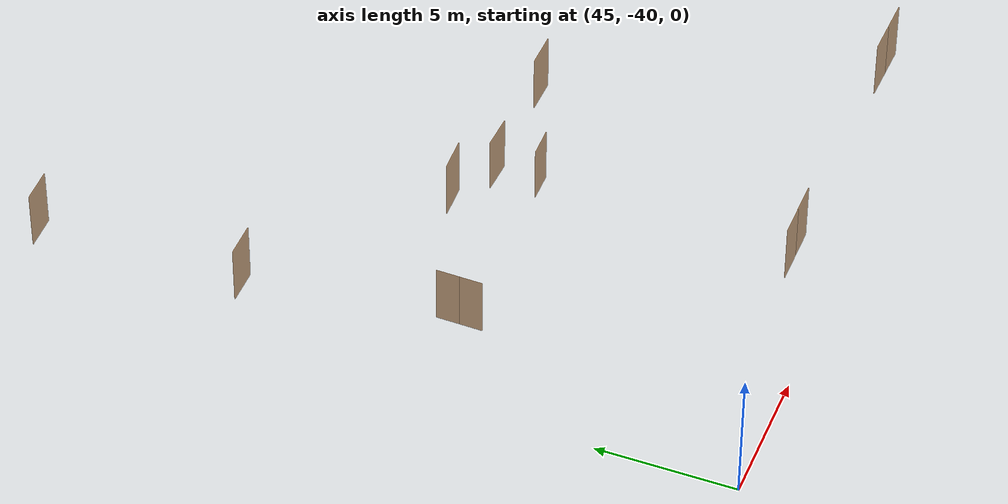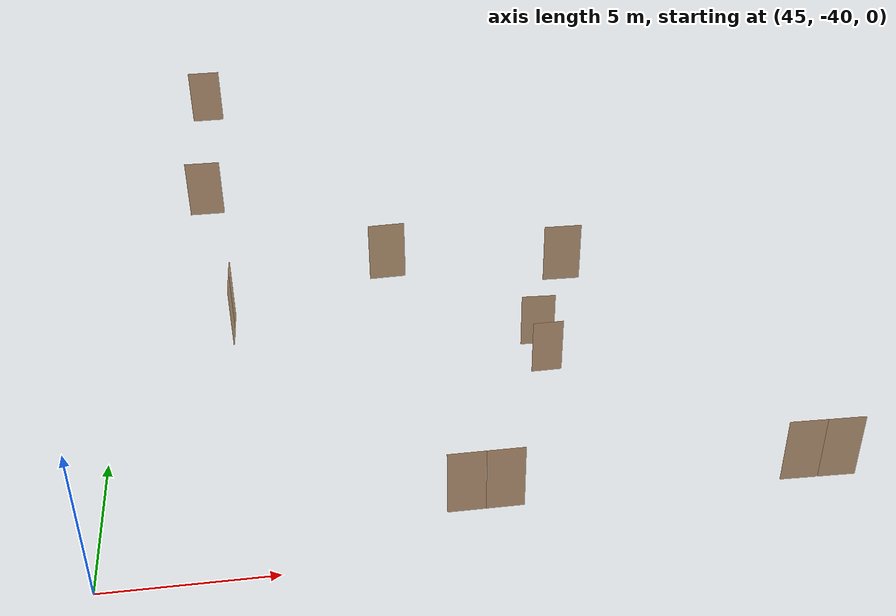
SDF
<sdf version="1.7">
 <world name="sim_world">
  <model name="puerta5">
   <pose>55.85550273947435 -38.24773751925642 0.0 0 0 0.00253646287035479</pose>
   <link name="right">
    <pose>0.5595211787744906 0 1.11 0 0 0</pose>
    <visual name="right_visual">
     <geometry><box><size>1.1090423575489812 0.03 2.2</size></box></geometry>
     <material>
      <ambient>0.5 0.25 0 0.6</ambient>
      <diffuse>0.5 0.25 0 0.6</diffuse>
      <pbr><metal><metalness>0.0</metalness></metal></pbr>
     </material>
    </visual>
    <collision name="right_collision">
     <geometry><box><size>1.1090423575489812 0.03 2.2</size></box></geometry>
     <surface><contact><collide_bitmask>0x02</collide_bitmask></contact></surface>
    </collision>
    <inertial>
     <mass>50.0</mass>
     <inertia><ixx>20.17041666666667</ixx><iyy>25.291562295157515</iyy><izz>5.128645628490842</izz></inertia>
    </inertial>
   </link>
   <joint name="right_joint" type="revolute">
    <parent>world</parent>
    <child>right</child>
    <axis><xyz>0 0 -1</xyz><limit><lower>0</lower><upper>1.57</upper></limit></axis>
    <pose>0.5595211787744906 0 0 0 0 0</pose>
   </joint>
   <link name="left">
    <pose>-0.5595211787744906 0 1.11 0 0 0</pose>
    <visual name="left_visual">
     <geometry><box><size>1.1090423575489812 0.03 2.2</size></box></geometry>
     <material>
      <ambient>0.5 0.25 0 0.6</ambient>
      <diffuse>0.5 0.25 0 0.6</diffuse>
      <pbr><metal><metalness>0.0</metalness></metal></pbr>
     </material>
    </visual>
    <collision name="left_collision">
     <geometry><box><size>1.1090423575489812 0.03 2.2</size></box></geometry>
     <surface><contact><collide_bitmask>0x02</collide_bitmask></contact></surface>
    </collision>
    <inertial>
     <mass>50.0</mass>
     <inertia><ixx>20.17041666666667</ixx><iyy>25.291562295157515</iyy><izz>5.128645628490842</izz></inertia>
    </inertial>
   </link>
   <joint name="left_joint" type="revolute">
    <parent>world</parent>
    <child>left</child>
    <axis><xyz>0 0 -1</xyz><limit><lower>-1.57</lower><upper>0</upper></limit></axis>
    <pose>-0.5595211787744906 0 0 0 0 0</pose>
   </joint>
   <plugin name="register_component" filename="libregister_component.so">
    <component name="Door">
     <v_max_door>0.5</v_max_door>
     <a_max_door>0.3</a_max_door>
     <a_nom_door>0.15</a_nom_door>
     <dx_min_door>0.01</dx_min_door>
     <f_max_door>500.0</f_max_door>
     <ros_interface>true</ros_interface>
     <door name="puerta5" type="DoubleSwingDoor" left_joint_name="left_joint" right_joint_name="right_joint"/>
    </component>
   </plugin>
  </model>
  <model name="puerta4">
   <pose>65.71122689819899 -38.2626244305521 0.0 0 0 -0.024666939195955244</pose>
   <link name="right">
    <pose>0.565615589511446 0 1.11 0 0 0</pose>
    <visual name="right_visual">
     <geometry><box><size>1.121231179022892 0.03 2.2</size></box></geometry>
     <material>
      <ambient>0.5 0.25 0 0.6</ambient>
      <diffuse>0.5 0.25 0 0.6</diffuse>
      <pbr><metal><metalness>0.0</metalness></metal></pbr>
     </material>
    </visual>
    <collision name="right_collision">
     <geometry><box><size>1.121231179022892 0.03 2.2</size></box></geometry>
     <surface><contact><collide_bitmask>0x02</collide_bitmask></contact></surface>
    </collision>
    <inertial>
     <mass>50.0</mass>
     <inertia><ixx>20.17041666666667</ixx><iyy>25.404830653387773</iyy><izz>5.2419139867211015</izz></inertia>
    </inertial>
   </link>
   <joint name="right_joint" type="revolute">
    <parent>world</parent>
    <child>right</child>
    <axis><xyz>0 0 -1</xyz><limit><lower>0</lower><upper>1.57</upper></limit></axis>
    <pose>0.565615589511446 0 0 0 0 0</pose>
   </joint>
   <link name="left">
    <pose>-0.565615589511446 0 1.11 0 0 0</pose>
    <visual name="left_visual">
     <geometry><box><size>1.121231179022892 0.03 2.2</size></box></geometry>
     <material>
      <ambient>0.5 0.25 0 0.6</ambient>
      <diffuse>0.5 0.25 0 0.6</diffuse>
      <pbr><metal><metalness>0.0</metalness></metal></pbr>
     </material>
    </visual>
    <collision name="left_collision">
     <geometry><box><size>1.121231179022892 0.03 2.2</size></box></geometry>
     <surface><contact><collide_bitmask>0x02</collide_bitmask></contact></surface>
    </collision>
    <inertial>
     <mass>50.0</mass>
     <inertia><ixx>20.17041666666667</ixx><iyy>25.404830653387773</iyy><izz>5.2419139867211015</izz></inertia>
    </inertial>
   </link>
   <joint name="left_joint" type="revolute">
    <parent>world</parent>
    <child>left</child>
    <axis><xyz>0 0 -1</xyz><limit><lower>-1.57</lower><upper>0</upper></limit></axis>
    <pose>-0.565615589511446 0 0 0 0 0</pose>
   </joint>
   <plugin name="register_component" filename="libregister_component.so">
    <component name="Door">
     <v_max_door>0.5</v_max_door>
     <a_max_door>0.3</a_max_door>
     <a_nom_door>0.15</a_nom_door>
     <dx_min_door>0.01</dx_min_door>
     <f_max_door>500.0</f_max_door>
     <ros_interface>true</ros_interface>
     <door name="puerta4" type="DoubleSwingDoor" left_joint_name="left_joint" right_joint_name="right_joint"/>
    </component>
   </plugin>
  </model>
  <model name="puertaEC">
   <pose>60.15206084789442 -27.380492492945216 0.0 0 0 -0.021615490977527397</pose>
   <link name="right">
    <pose>0 0 1.11 0 0 0</pose>
    <visual name="right_visual">
     <geometry><box><size>1.2803512290869254 0.03 2.2</size></box></geometry>
     <material>
      <ambient>0.5 0.25 0 0.6</ambient>
      <diffuse>0.5 0.25 0 0.6</diffuse>
      <pbr><metal><metalness>0.0</metalness></metal></pbr>
     </material>
    </visual>
    <collision name="right_collision">
     <geometry><box><size>1.2803512290869254 0.03 2.2</size></box></geometry>
     <surface><contact><collide_bitmask>0x02</collide_bitmask></contact></surface>
    </collision>
    <inertial>
     <mass>50.0</mass>
     <inertia><ixx>20.17041666666667</ixx><iyy>26.997080290935006</iyy><izz>6.834163624268336</izz></inertia>
    </inertial>
   </link>
   <joint name="right_joint" type="revolute">
    <parent>world</parent>
    <child>right</child>
    <axis><xyz>0 0 -1</xyz><limit><lower>0</lower><upper>1.57</upper></limit></axis>
    <pose>0.6451756145434627 0 0 0 0 0</pose>
   </joint>
   <plugin name="register_component" filename="libregister_component.so">
    <component name="Door">
     <v_max_door>0.5</v_max_door>
     <a_max_door>0.3</a_max_door>
     <a_nom_door>0.15</a_nom_door>
     <dx_min_door>0.01</dx_min_door>
     <f_max_door>500.0</f_max_door>
     <ros_interface>true</ros_interface>
     <door name="puertaEC" type="SwingDoor" left_joint_name="empty_joint" right_joint_name="right_joint"/>
    </component>
   </plugin>
  </model>
  <model name="puertaB3">
   <pose>48.694874851013125 -28.84258975723971 0.0 0 0 1.5494775355953916</pose>
   <link name="right">
    <pose>0.41934321853720863 0 1.11 0 0 0</pose>
    <visual name="right_visual">
     <geometry><box><size>0.8286864370744172 0.03 2.2</size></box></geometry>
     <material>
      <ambient>0.5 0.25 0 0.6</ambient>
      <diffuse>0.5 0.25 0 0.6</diffuse>
      <pbr><metal><metalness>0.0</metalness></metal></pbr>
     </material>
    </visual>
    <collision name="right_collision">
     <geometry><box><size>0.8286864370744172 0.03 2.2</size></box></geometry>
     <surface><contact><collide_bitmask>0x02</collide_bitmask></contact></surface>
    </collision>
    <inertial>
     <mass>50.0</mass>
     <inertia><ixx>20.17041666666667</ixx><iyy>23.028005045796224</iyy><izz>2.8650883791295505</izz></inertia>
    </inertial>
   </link>
   <joint name="right_joint" type="revolute">
    <parent>world</parent>
    <child>right</child>
    <axis><xyz>0 0 -1</xyz><limit><lower>0</lower><upper>1.57</upper></limit></axis>
    <pose>0.41934321853720863 0 0 0 0 0</pose>
   </joint>
   <link name="left">
    <pose>-0.41934321853720863 0 1.11 0 0 0</pose>
    <visual name="left_visual">
     <geometry><box><size>0.8286864370744172 0.03 2.2</size></box></geometry>
     <material>
      <ambient>0.5 0.25 0 0.6</ambient>
      <diffuse>0.5 0.25 0 0.6</diffuse>
      <pbr><metal><metalness>0.0</metalness></metal></pbr>
     </material>
    </visual>
    <collision name="left_collision">
     <geometry><box><size>0.8286864370744172 0.03 2.2</size></box></geometry>
     <surface><contact><collide_bitmask>0x02</collide_bitmask></contact></surface>
    </collision>
    <inertial>
     <mass>50.0</mass>
     <inertia><ixx>20.17041666666667</ixx><iyy>23.028005045796224</iyy><izz>2.8650883791295505</izz></inertia>
    </inertial>
   </link>
   <joint name="left_joint" type="revolute">
    <parent>world</parent>
    <child>left</child>
    <axis><xyz>0 0 -1</xyz><limit><lower>-1.57</lower><upper>0</upper></limit></axis>
    <pose>-0.41934321853720863 0 0 0 0 0</pose>
   </joint>
   <plugin name="register_component" filename="libregister_component.so">
    <component name="Door">
     <v_max_door>0.5</v_max_door>
     <a_max_door>0.3</a_max_door>
     <a_nom_door>0.15</a_nom_door>
     <dx_min_door>0.01</dx_min_door>
     <f_max_door>500.0</f_max_door>
     <ros_interface>true</ros_interface>
     <door name="puertaB3" type="DoubleSwingDoor" left_joint_name="left_joint" right_joint_name="right_joint"/>
    </component>
   </plugin>
  </model>
  <model name="w">
   <pose>47.53542708004542 -13.956538227798013 0.0 0 0 -3.132897220578016</pose>
   <link name="right">
    <pose>0 0 1.11 0 0 0</pose>
    <visual name="right_visual">
     <geometry><box><size>1.2334103184774419 0.03 2.2</size></box></geometry>
     <material>
      <ambient>0.5 0.25 0 0.6</ambient>
      <diffuse>0.5 0.25 0 0.6</diffuse>
      <pbr><metal><metalness>0.0</metalness></metal></pbr>
     </material>
    </visual>
    <collision name="right_collision">
     <geometry><box><size>1.2334103184774419 0.03 2.2</size></box></geometry>
     <surface><contact><collide_bitmask>0x02</collide_bitmask></contact></surface>
    </collision>
    <inertial>
     <mass>50.0</mass>
     <inertia><ixx>20.17041666666667</ixx><iyy>26.505420890527606</iyy><izz>6.342504223860936</izz></inertia>
    </inertial>
   </link>
   <joint name="right_joint" type="revolute">
    <parent>world</parent>
    <child>right</child>
    <axis><xyz>0 0 1</xyz><limit><lower>0</lower><upper>1.57</upper></limit></axis>
    <pose>0.6217051592387209 0 0 0 0 0</pose>
   </joint>
   <plugin name="register_component" filename="libregister_component.so">
    <component name="Door">
     <v_max_door>0.5</v_max_door>
     <a_max_door>0.3</a_max_door>
     <a_nom_door>0.15</a_nom_door>
     <dx_min_door>0.01</dx_min_door>
     <f_max_door>500.0</f_max_door>
     <ros_interface>true</ros_interface>
     <door name="w" type="SwingDoor" left_joint_name="empty_joint" right_joint_name="right_joint"/>
    </component>
   </plugin>
  </model>
  <model name="puertaB6">
   <pose>47.64739691049482 -21.400888974734656 0.0 0 0 -0.005553022187559174</pose>
   <link name="right">
    <pose>0 0 1.11 0 0 0</pose>
    <visual name="right_visual">
     <geometry><box><size>1.2583278648812628 0.03 2.2</size></box></geometry>
     <material>
      <ambient>0.5 0.25 0 0.6</ambient>
      <diffuse>0.5 0.25 0 0.6</diffuse>
      <pbr><metal><metalness>0.0</metalness></metal></pbr>
     </material>
    </visual>
    <collision name="right_collision">
     <geometry><box><size>1.2583278648812628 0.03 2.2</size></box></geometry>
     <surface><contact><collide_bitmask>0x02</collide_bitmask></contact></surface>
    </collision>
    <inertial>
     <mass>50.0</mass>
     <inertia><ixx>20.17041666666667</ixx><iyy>26.764120898069326</iyy><izz>6.601204231402656</izz></inertia>
    </inertial>
   </link>
   <joint name="right_joint" type="revolute">
    <parent>world</parent>
    <child>right</child>
    <axis><xyz>0 0 -1</xyz><limit><lower>0</lower><upper>1.57</upper></limit></axis>
    <pose>0.6341639324406314 0 0 0 0 0</pose>
   </joint>
   <plugin name="register_component" filename="libregister_component.so">
    <component name="Door">
     <v_max_door>0.5</v_max_door>
     <a_max_door>0.3</a_max_door>
     <a_nom_door>0.15</a_nom_door>
     <dx_min_door>0.01</dx_min_door>
     <f_max_door>500.0</f_max_door>
     <ros_interface>true</ros_interface>
     <door name="puertaB6" type="SwingDoor" left_joint_name="empty_joint" right_joint_name="right_joint"/>
    </component>
   </plugin>
  </model>
  <model name="puerta3">
   <pose>54.07758860303299 -26.469493609463562 0.0 0 0 0.03399783386577453</pose>
   <link name="right">
    <pose>0 0 1.11 0 0 0</pose>
    <visual name="right_visual">
     <geometry><box><size>1.2526073532450872 0.03 2.2</size></box></geometry>
     <material>
      <ambient>0.5 0.25 0 0.6</ambient>
      <diffuse>0.5 0.25 0 0.6</diffuse>
      <pbr><metal><metalness>0.0</metalness></metal></pbr>
     </material>
    </visual>
    <collision name="right_collision">
     <geometry><box><size>1.2526073532450872 0.03 2.2</size></box></geometry>
     <surface><contact><collide_bitmask>0x02</collide_bitmask></contact></surface>
    </collision>
    <inertial>
     <mass>50.0</mass>
     <inertia><ixx>20.17041666666667</ixx><iyy>26.704271589181932</iyy><izz>6.541354922515261</izz></inertia>
    </inertial>
   </link>
   <joint name="right_joint" type="revolute">
    <parent>world</parent>
    <child>right</child>
    <axis><xyz>0 0 1</xyz><limit><lower>0</lower><upper>1.57</upper></limit></axis>
    <pose>0.6313036766225436 0 0 0 0 0</pose>
   </joint>
   <plugin name="register_component" filename="libregister_component.so">
    <component name="Door">
     <v_max_door>0.5</v_max_door>
     <a_max_door>0.3</a_max_door>
     <a_nom_door>0.15</a_nom_door>
     <dx_min_door>0.01</dx_min_door>
     <f_max_door>500.0</f_max_door>
     <ros_interface>true</ros_interface>
     <door name="puerta3" type="SwingDoor" left_joint_name="empty_joint" right_joint_name="right_joint"/>
    </component>
   </plugin>
  </model>
  <model name="prueta-s12">
   <pose>59.75101315149101 -27.559603310696495 -4.0 0 0 -3.1259927492132356</pose>
   <link name="right">
    <pose>0 0 1.11 0 0 0</pose>
    <visual name="right_visual">
     <geometry><box><size>1.112293472995094 0.03 2.2</size></box></geometry>
     <material>
      <ambient>0.5 0.25 0 0.6</ambient>
      <diffuse>0.5 0.25 0 0.6</diffuse>
      <pbr><metal><metalness>0.0</metalness></metal></pbr>
     </material>
    </visual>
    <collision name="right_collision">
     <geometry><box><size>1.112293472995094 0.03 2.2</size></box></geometry>
     <surface><contact><collide_bitmask>0x02</collide_bitmask></contact></surface>
    </collision>
    <inertial>
     <mass>50.0</mass>
     <inertia><ixx>20.17041666666667</ixx><iyy>25.32165320861454</iyy><izz>5.1587365419478655</izz></inertia>
    </inertial>
   </link>
   <joint name="right_joint" type="revolute">
    <parent>world</parent>
    <child>right</child>
    <axis><xyz>0 0 1</xyz><limit><lower>0</lower><upper>1.57</upper></limit></axis>
    <pose>0.561146736497547 0 0 0 0 0</pose>
   </joint>
   <plugin name="register_component" filename="libregister_component.so">
    <component name="Door">
     <v_max_door>0.5</v_max_door>
     <a_max_door>0.3</a_max_door>
     <a_nom_door>0.15</a_nom_door>
     <dx_min_door>0.01</dx_min_door>
     <f_max_door>500.0</f_max_door>
     <ros_interface>true</ros_interface>
     <door name="prueta-s12" type="SwingDoor" left_joint_name="empty_joint" right_joint_name="right_joint"/>
    </component>
   </plugin>
  </model>
  <model name="prueta-s13">
   <pose>59.688264637268475 -25.93351579884088 -4.0 0 0 3.094342497618009</pose>
   <link name="right">
    <pose>0 0 1.11 0 0 0</pose>
    <visual name="right_visual">
     <geometry><box><size>1.2519070923436058 0.03 2.2</size></box></geometry>
     <material>
      <ambient>0.5 0.25 0 0.6</ambient>
      <diffuse>0.5 0.25 0 0.6</diffuse>
      <pbr><metal><metalness>0.0</metalness></metal></pbr>
     </material>
    </visual>
    <collision name="right_collision">
     <geometry><box><size>1.2519070923436058 0.03 2.2</size></box></geometry>
     <surface><contact><collide_bitmask>0x02</collide_bitmask></contact></surface>
    </collision>
    <inertial>
     <mass>50.0</mass>
     <inertia><ixx>20.17041666666667</ixx><iyy>26.696964032750927</iyy><izz>6.534047366084256</izz></inertia>
    </inertial>
   </link>
   <joint name="right_joint" type="revolute">
    <parent>world</parent>
    <child>right</child>
    <axis><xyz>0 0 1</xyz><limit><lower>0</lower><upper>1.57</upper></limit></axis>
    <pose>0.6309535461718029 0 0 0 0 0</pose>
   </joint>
   <plugin name="register_component" filename="libregister_component.so">
    <component name="Door">
     <v_max_door>0.5</v_max_door>
     <a_max_door>0.3</a_max_door>
     <a_nom_door>0.15</a_nom_door>
     <dx_min_door>0.01</dx_min_door>
     <f_max_door>500.0</f_max_door>
     <ros_interface>true</ros_interface>
     <door name="prueta-s13" type="SwingDoor" left_joint_name="empty_joint" right_joint_name="right_joint"/>
    </component>
   </plugin>
  </model>
 </world>
</sdf>
